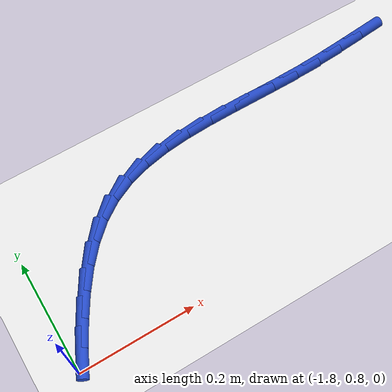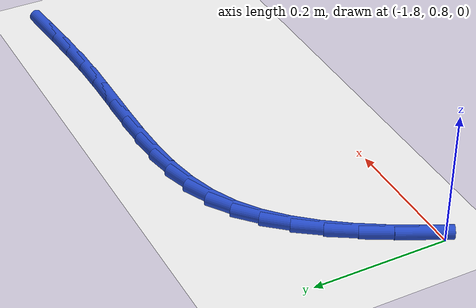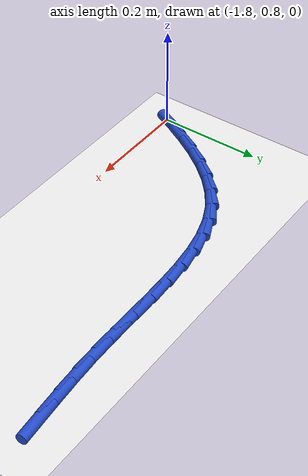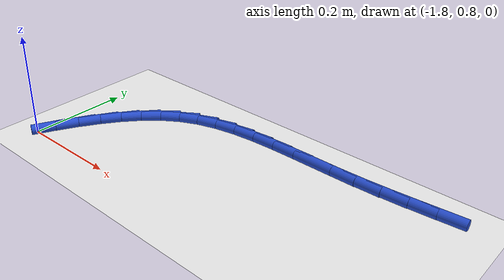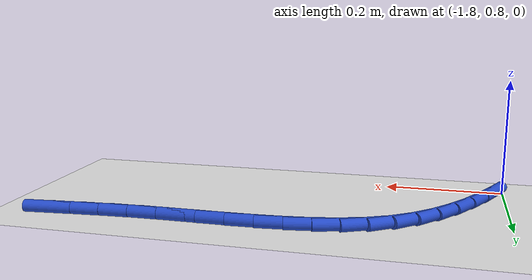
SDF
<sdf version="1.6">
 <world name="default">
  <model name="ground_plane">
   <static>1</static>
   <link name="link">
    <collision name="collision">
     <geometry><plane><normal>0 0 1</normal><size>100 100</size></plane></geometry>
     <surface><friction><ode><mu>100</mu><mu2>50</mu2></ode></friction></surface>
    </collision>
    <visual name="visual">
     <cast_shadows>0</cast_shadows>
     <geometry><plane><normal>0 0 1</normal><size>100 100</size></plane></geometry>
     <material>
      <script><uri>file://media/materials/scripts/gazebo.material</uri><name>Gazebo/WhiteGlow</name></script>
     </material>
    </visual>
   </link>
  </model>
  <model name="line">
   <link name="link_38">
    <pose>-1.0814511499444899 1.0775373483566624 0.01 0 1.57 0.0881901494907465</pose>
    <collision name="collision">
     <geometry><cylinder><radius>0.01</radius><length>0.08</length></cylinder></geometry>
    </collision>
    <visual name="visual">
     <material>
      <script><name>Gazebo/Blue</name><uri>file://media/materials/scripts/gazebo.material</uri></script>
     </material>
     <geometry><cylinder><radius>0.01</radius><length>0.08</length></cylinder></geometry>
    </visual>
   </link>
   <link name="link_39">
    <pose>-1.1290868634146751 1.0733254225776638 0.01 0 1.57 0.07694784559035789</pose>
    <collision name="collision">
     <geometry><cylinder><radius>0.01</radius><length>0.08</length></cylinder></geometry>
    </collision>
    <visual name="visual">
     <material>
      <script><name>Gazebo/Blue</name><uri>file://media/materials/scripts/gazebo.material</uri></script>
     </material>
     <geometry><cylinder><radius>0.01</radius><length>0.08</length></cylinder></geometry>
    </visual>
   </link>
   <link name="link_40">
    <pose>-1.1771983172617206 1.0696160258877545 0.01 0 1.57 0.05302271331929114</pose>
    <collision name="collision">
     <geometry><cylinder><radius>0.01</radius><length>0.08</length></cylinder></geometry>
    </collision>
    <visual name="visual">
     <material>
      <script><name>Gazebo/Blue</name><uri>file://media/materials/scripts/gazebo.material</uri></script>
     </material>
     <geometry><cylinder><radius>0.01</radius><length>0.08</length></cylinder></geometry>
    </visual>
   </link>
   <link name="link_41">
    <pose>-1.2256222788688422 1.067046047182478 0.01 0 1.57 0.020469968103375757</pose>
    <collision name="collision">
     <geometry><cylinder><radius>0.01</radius><length>0.08</length></cylinder></geometry>
    </collision>
    <visual name="visual">
     <material>
      <script><name>Gazebo/Blue</name><uri>file://media/materials/scripts/gazebo.material</uri></script>
     </material>
     <geometry><cylinder><radius>0.01</radius><length>0.08</length></cylinder></geometry>
    </visual>
   </link>
   <link name="link_42">
    <pose>-1.2741656100175798 1.0660522279284406 0.01 0 1.57 -0.00043402135909211773</pose>
    <collision name="collision">
     <geometry><cylinder><radius>0.01</radius><length>0.08</length></cylinder></geometry>
    </collision>
    <visual name="visual">
     <material>
      <script><name>Gazebo/Blue</name><uri>file://media/materials/scripts/gazebo.material</uri></script>
     </material>
     <geometry><cylinder><radius>0.01</radius><length>0.08</length></cylinder></geometry>
    </visual>
   </link>
   <link name="link_43">
    <pose>-1.322486037088437 1.0660732000271866 0.01 0 1.57 -0.0034349697633158185</pose>
    <collision name="collision">
     <geometry><cylinder><radius>0.01</radius><length>0.08</length></cylinder></geometry>
    </collision>
    <visual name="visual">
     <material>
      <script><name>Gazebo/Blue</name><uri>file://media/materials/scripts/gazebo.material</uri></script>
     </material>
     <geometry><cylinder><radius>0.01</radius><length>0.08</length></cylinder></geometry>
    </visual>
   </link>
   <link name="link_44">
    <pose>-1.3701948897877358 1.0662370791381892 0.01 0 1.57 0.012099905925100116</pose>
    <collision name="collision">
     <geometry><cylinder><radius>0.01</radius><length>0.08</length></cylinder></geometry>
    </collision>
    <visual name="visual">
     <material>
      <script><name>Gazebo/Blue</name><uri>file://media/materials/scripts/gazebo.material</uri></script>
     </material>
     <geometry><cylinder><radius>0.01</radius><length>0.08</length></cylinder></geometry>
    </visual>
   </link>
   <link name="link_45">
    <pose>-1.4169034830368563 1.065671881970635 0.01 0 1.57 0.047763149986099145</pose>
    <collision name="collision">
     <geometry><cylinder><radius>0.01</radius><length>0.08</length></cylinder></geometry>
    </collision>
    <visual name="visual">
     <material>
      <script><name>Gazebo/Blue</name><uri>file://media/materials/scripts/gazebo.material</uri></script>
     </material>
     <geometry><cylinder><radius>0.01</radius><length>0.08</length></cylinder></geometry>
    </visual>
   </link>
   <link name="link_46">
    <pose>-1.4622231317571772 1.0635056252337116 0.01 0 1.57 0.10614717876251863</pose>
    <collision name="collision">
     <geometry><cylinder><radius>0.01</radius><length>0.08</length></cylinder></geometry>
    </collision>
    <visual name="visual">
     <material>
      <script><name>Gazebo/Blue</name><uri>file://media/materials/scripts/gazebo.material</uri></script>
     </material>
     <geometry><cylinder><radius>0.01</radius><length>0.08</length></cylinder></geometry>
    </visual>
   </link>
   <link name="link_47">
    <pose>-1.5057651508700798 1.0588663256366069 0.01 0 1.57 0.19062820335646008</pose>
    <collision name="collision">
     <geometry><cylinder><radius>0.01</radius><length>0.08</length></cylinder></geometry>
    </collision>
    <visual name="visual">
     <material>
      <script><name>Gazebo/Blue</name><uri>file://media/materials/scripts/gazebo.material</uri></script>
     </material>
     <geometry><cylinder><radius>0.01</radius><length>0.08</length></cylinder></geometry>
    </visual>
   </link>
   <link name="link_48">
    <pose>-1.5471408552969441 1.050881999888508 0.01 0 1.57 0.3045235966203885</pose>
    <collision name="collision">
     <geometry><cylinder><radius>0.01</radius><length>0.08</length></cylinder></geometry>
    </collision>
    <visual name="visual">
     <material>
      <script><name>Gazebo/Blue</name><uri>file://media/materials/scripts/gazebo.material</uri></script>
     </material>
     <geometry><cylinder><radius>0.01</radius><length>0.08</length></cylinder></geometry>
    </visual>
   </link>
   <link name="link_49">
    <pose>-1.58596155995915 1.0386806646986027 0.01 0 1.57 0.44904205229613137</pose>
    <collision name="collision">
     <geometry><cylinder><radius>0.01</radius><length>0.08</length></cylinder></geometry>
    </collision>
    <visual name="visual">
     <material>
      <script><name>Gazebo/Blue</name><uri>file://media/materials/scripts/gazebo.material</uri></script>
     </material>
     <geometry><cylinder><radius>0.01</radius><length>0.08</length></cylinder></geometry>
    </visual>
   </link>
   <link name="link_50">
    <pose>-1.6218393976123193 1.0213920627354787 0.01 0 1.57 0.6086790457043356</pose>
    <collision name="collision">
     <geometry><cylinder><radius>0.01</radius><length>0.08</length></cylinder></geometry>
    </collision>
    <visual name="visual">
     <material>
      <script><name>Gazebo/Blue</name><uri>file://media/materials/scripts/gazebo.material</uri></script>
     </material>
     <geometry><cylinder><radius>0.01</radius><length>0.08</length></cylinder></geometry>
    </visual>
   </link>
   <link name="link_51">
    <pose>-1.6545867881548593 0.9985686231480351 0.01 0 1.57 0.7497780026498171</pose>
    <collision name="collision">
     <geometry><cylinder><radius>0.01</radius><length>0.08</length></cylinder></geometry>
    </collision>
    <visual name="visual">
     <material>
      <script><name>Gazebo/Blue</name><uri>file://media/materials/scripts/gazebo.material</uri></script>
     </material>
     <geometry><cylinder><radius>0.01</radius><length>0.08</length></cylinder></geometry>
    </visual>
   </link>
   <link name="link_52">
    <pose>-1.6844770159355724 0.9707353845583916 0.01 0 1.57 0.8660047691046775</pose>
    <collision name="collision">
     <geometry><cylinder><radius>0.01</radius><length>0.08</length></cylinder></geometry>
    </collision>
    <visual name="visual">
     <material>
      <script><name>Gazebo/Blue</name><uri>file://media/materials/scripts/gazebo.material</uri></script>
     </material>
     <geometry><cylinder><radius>0.01</radius><length>0.08</length></cylinder></geometry>
    </visual>
   </link>
   <link name="link_53">
    <pose>-1.711847951943183 0.9385536893929116 0.01 0 1.57 0.9585498688544589</pose>
    <collision name="collision">
     <geometry><cylinder><radius>0.01</radius><length>0.08</length></cylinder></geometry>
    </collision>
    <visual name="visual">
     <material>
      <script><name>Gazebo/Blue</name><uri>file://media/materials/scripts/gazebo.material</uri></script>
     </material>
     <geometry><cylinder><radius>0.01</radius><length>0.08</length></cylinder></geometry>
    </visual>
   </link>
   <link name="link_54">
    <pose>-1.737037467166414 0.9026848800779569 0.01 0 1.57 1.030202602927615</pose>
    <collision name="collision">
     <geometry><cylinder><radius>0.01</radius><length>0.08</length></cylinder></geometry>
    </collision>
    <visual name="visual">
     <material>
      <script><name>Gazebo/Blue</name><uri>file://media/materials/scripts/gazebo.material</uri></script>
     </material>
     <geometry><cylinder><radius>0.01</radius><length>0.08</length></cylinder></geometry>
    </visual>
   </link>
   <link name="link_55">
    <pose>-1.7603834325939864 0.8637902990398908 0.01 0 1.57 1.0839485673946732</pose>
    <collision name="collision">
     <geometry><cylinder><radius>0.01</radius><length>0.08</length></cylinder></geometry>
    </collision>
    <visual name="visual">
     <material>
      <script><name>Gazebo/Blue</name><uri>file://media/materials/scripts/gazebo.material</uri></script>
     </material>
     <geometry><cylinder><radius>0.01</radius><length>0.08</length></cylinder></geometry>
    </visual>
   </link>
   <link name="link_56">
    <pose>-1.7822237192146237 0.8225312887050757 0.01 0 1.57 1.1223181926764925</pose>
    <collision name="collision">
     <geometry><cylinder><radius>0.01</radius><length>0.08</length></cylinder></geometry>
    </collision>
    <visual name="visual">
     <material>
      <script><name>Gazebo/Blue</name><uri>file://media/materials/scripts/gazebo.material</uri></script>
     </material>
     <geometry><cylinder><radius>0.01</radius><length>0.08</length></cylinder></geometry>
    </visual>
   </link>
  </model>
 </world>
</sdf>
